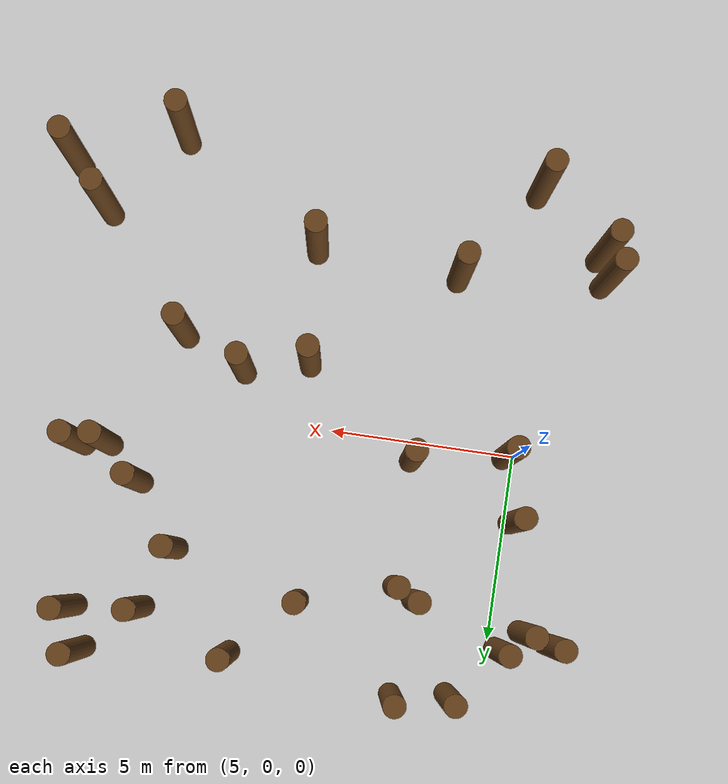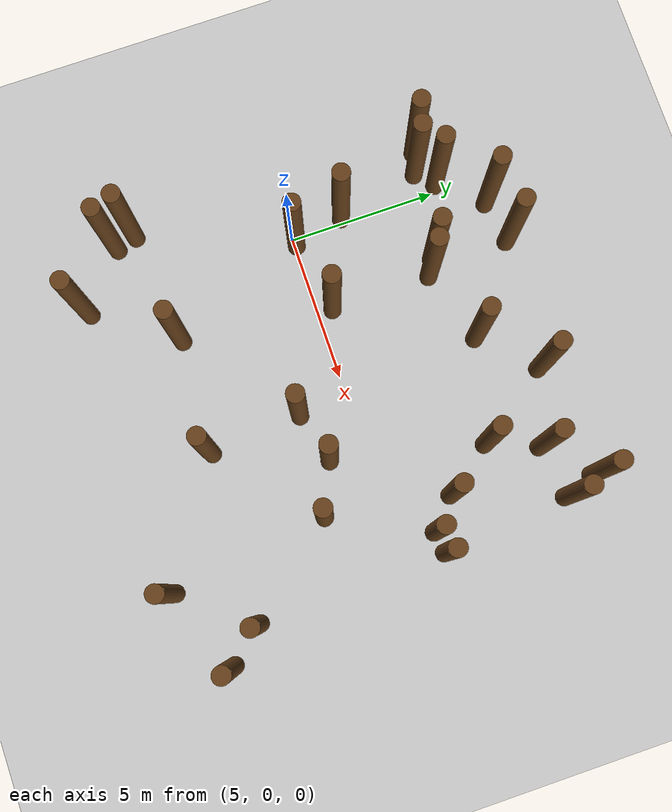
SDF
<?xml version="1.0" encoding="UTF-8"?>
<sdf version="1.9">
  <world name="forest">
    <physics type="ode">
      <max_step_size>0.004</max_step_size>
      <real_time_factor>1.0</real_time_factor>
      <real_time_update_rate>250</real_time_update_rate>
    </physics>
    <plugin name="gz::sim::systems::Physics" filename="gz-sim-physics-system"/>
    <plugin name="gz::sim::systems::UserCommands" filename="gz-sim-user-commands-system"/>
    <plugin name="gz::sim::systems::SceneBroadcaster" filename="gz-sim-scene-broadcaster-system"/>
    <plugin name="gz::sim::systems::Contact" filename="gz-sim-contact-system"/>
    <plugin name="gz::sim::systems::Imu" filename="gz-sim-imu-system"/>
    <plugin name="gz::sim::systems::AirPressure" filename="gz-sim-air-pressure-system"/>
    <plugin name="gz::sim::systems::ApplyLinkWrench" filename="gz-sim-apply-link-wrench-system"/>
    <plugin name="gz::sim::systems::NavSat" filename="gz-sim-navsat-system"/>
    <plugin name="gz::sim::systems::Sensors" filename="gz-sim-sensors-system">
      <render_engine>ogre2</render_engine>
    </plugin>
    <gui fullscreen="false">
      <plugin filename="MinimalScene" name="3D View">
        <gz-gui>
          <title>3D View</title>
          <property type="bool" key="showTitleBar">false</property>
          <property type="string" key="state">docked</property>
        </gz-gui>
        <engine>ogre2</engine>
        <scene>scene</scene>
        <ambient_light>0.4 0.4 0.4</ambient_light>
        <background_color>0.8 0.8 0.8</background_color>
        <camera_pose>-6 0 6 0 0.5 0</camera_pose>
        <camera_clip>
          <near>0.25</near>
          <far>25000</far>
        </camera_clip>
      </plugin>
      <plugin filename="EntityContextMenuPlugin" name="Entity context menu">
        <gz-gui>
          <property key="state" type="string">floating</property>
          <property key="width" type="double">5</property>
          <property key="height" type="double">5</property>
          <property key="showTitleBar" type="bool">false</property>
        </gz-gui>
      </plugin>
      <plugin filename="GzSceneManager" name="Scene Manager">
        <gz-gui>
          <property key="resizable" type="bool">false</property>
          <property key="width" type="double">5</property>
          <property key="height" type="double">5</property>
          <property key="state" type="string">floating</property>
          <property key="showTitleBar" type="bool">false</property>
        </gz-gui>
      </plugin>
      <plugin filename="InteractiveViewControl" name="Interactive view control">
        <gz-gui>
          <property key="resizable" type="bool">false</property>
          <property key="width" type="double">5</property>
          <property key="height" type="double">5</property>
          <property key="state" type="string">floating</property>
          <property key="showTitleBar" type="bool">false</property>
        </gz-gui>
      </plugin>
      <plugin filename="CameraTracking" name="Camera Tracking">
        <gz-gui>
          <property key="resizable" type="bool">false</property>
          <property key="width" type="double">5</property>
          <property key="height" type="double">5</property>
          <property key="state" type="string">floating</property>
          <property key="showTitleBar" type="bool">false</property>
        </gz-gui>
      </plugin>
      <plugin filename="MarkerManager" name="Marker manager">
        <gz-gui>
          <property key="resizable" type="bool">false</property>
          <property key="width" type="double">5</property>
          <property key="height" type="double">5</property>
          <property key="state" type="string">floating</property>
          <property key="showTitleBar" type="bool">false</property>
        </gz-gui>
      </plugin>
      <plugin filename="SelectEntities" name="Select Entities">
        <gz-gui>
          <anchors target="Select entities">
            <line own="right" target="right"/>
            <line own="top" target="top"/>
          </anchors>
          <property key="resizable" type="bool">false</property>
          <property key="width" type="double">5</property>
          <property key="height" type="double">5</property>
          <property key="state" type="string">floating</property>
          <property key="showTitleBar" type="bool">false</property>
        </gz-gui>
      </plugin>
      <plugin filename="VisualizationCapabilities" name="Visualization Capabilities">
        <gz-gui>
          <property key="resizable" type="bool">false</property>
          <property key="width" type="double">5</property>
          <property key="height" type="double">5</property>
          <property key="state" type="string">floating</property>
          <property key="showTitleBar" type="bool">false</property>
        </gz-gui>
      </plugin>
      <plugin filename="Spawn" name="Spawn Entities">
        <gz-gui>
          <anchors target="Select entities">
            <line own="right" target="right"/>
            <line own="top" target="top"/>
          </anchors>
          <property key="resizable" type="bool">false</property>
          <property key="width" type="double">5</property>
          <property key="height" type="double">5</property>
          <property key="state" type="string">floating</property>
          <property key="showTitleBar" type="bool">false</property>
        </gz-gui>
      </plugin>
      <plugin name="World control" filename="WorldControl">
        <gz-gui>
          <title>World control</title>
          <property type="bool" key="showTitleBar">0</property>
          <property type="bool" key="resizable">0</property>
          <property type="double" key="height">72</property>
          <property type="double" key="width">121</property>
          <property type="double" key="z">1</property>
          <property type="string" key="state">floating</property>
          <anchors target="3D View">
            <line own="left" target="left"/>
            <line own="bottom" target="bottom"/>
          </anchors>
        </gz-gui>
        <play_pause>1</play_pause>
        <step>1</step>
        <start_paused>1</start_paused>
      </plugin>
      <plugin name="World stats" filename="WorldStats">
        <gz-gui>
          <title>World stats</title>
          <property type="bool" key="showTitleBar">0</property>
          <property type="bool" key="resizable">0</property>
          <property type="double" key="height">110</property>
          <property type="double" key="width">290</property>
          <property type="double" key="z">1</property>
          <property type="string" key="state">floating</property>
          <anchors target="3D View">
            <line own="right" target="right"/>
            <line own="bottom" target="bottom"/>
          </anchors>
        </gz-gui>
        <sim_time>1</sim_time>
        <real_time>1</real_time>
        <real_time_factor>1</real_time_factor>
        <iterations>1</iterations>
      </plugin>
      <plugin name="Entity tree" filename="EntityTree"/>
    </gui>
    <gravity>0 0 -9.8</gravity>
    <magnetic_field>6e-06 2.3e-05 -4.2e-05</magnetic_field>
    <atmosphere type="adiabatic"/>
    <scene>
      <grid>false</grid>
      <ambient>0.4 0.4 0.4 1</ambient>
      <background>0.7 0.7 0.7 1</background>
      <shadows>true</shadows>
    </scene>
    <model name="ground_plane">
      <static>true</static>
      <link name="link">
        <collision name="collision">
          <geometry>
            <plane>
              <normal>0 0 1</normal>
              <size>1 1</size>
            </plane>
          </geometry>
          <surface>
            <friction>
              <ode/>
            </friction>
            <bounce/>
            <contact/>
          </surface>
        </collision>
        <visual name="visual">
          <geometry>
            <plane>
              <normal>0 0 1</normal>
              <size>100 100</size>
            </plane>
          </geometry>
          <material>
            <ambient>0.8 0.8 0.8 1</ambient>
            <diffuse>0.8 0.8 0.8 1</diffuse>
            <specular>0.8 0.8 0.8 1</specular>
          </material>
        </visual>
        <pose>0 0 0 0 -0 0</pose>
        <inertial>
          <pose>0 0 0 0 -0 0</pose>
          <mass>1</mass>
          <inertia>
            <ixx>1</ixx>
            <ixy>0</ixy>
            <ixz>0</ixz>
            <iyy>1</iyy>
            <iyz>0</iyz>
            <izz>1</izz>
          </inertia>
        </inertial>
        <enable_wind>false</enable_wind>
      </link>
      <pose>0 0 0 0 -0 0</pose>
      <self_collide>false</self_collide>
    </model>
    <light name="sunUTC" type="directional">
      <pose>0 0 500 0 -0 0</pose>
      <cast_shadows>true</cast_shadows>
      <intensity>1</intensity>
      <direction>0.001 0.625 -0.78</direction>
      <diffuse>0.904 0.904 0.904 1</diffuse>
      <specular>0.271 0.271 0.271 1</specular>
      <attenuation>
        <range>2000</range>
        <linear>0</linear>
        <constant>1</constant>
        <quadratic>0</quadratic>
      </attenuation>
      <spot>
        <inner_angle>0</inner_angle>
        <outer_angle>0</outer_angle>
        <falloff>0</falloff>
      </spot>
    </light>
    <spherical_coordinates>
      <surface_model>EARTH_WGS84</surface_model>
      <world_frame_orientation>ENU</world_frame_orientation>
      <latitude_deg>47.397971057728974</latitude_deg>
      <longitude_deg> 8.546163739800146</longitude_deg>
      <elevation>0</elevation>
    </spherical_coordinates>
    <model name="tree_0">
      <pose>4.767071417843711 5.213200132889732 2.5 0 0 0</pose>
      <static>true</static>
      <link name="link">
        <collision name="collision">
          <geometry>
            <cylinder>
              <radius>0.3</radius>
              <length>5.0</length>
            </cylinder>
          </geometry>
        </collision>
        <visual name="visual">
          <geometry>
            <cylinder>
              <radius>0.3</radius>
              <length>5.0</length>
            </cylinder>
          </geometry>
          <material>
            <ambient>0.3 0.2 0.1 1</ambient>
            <diffuse>0.4 0.25 0.1 1</diffuse>
          </material>
        </visual>
      </link>
    </model>
    <model name="tree_1">
      <pose>5.264033015202734 0.07883599719175205 2.5 0 0 0</pose>
      <static>true</static>
      <link name="link">
        <collision name="collision">
          <geometry>
            <cylinder>
              <radius>0.3</radius>
              <length>5.0</length>
            </cylinder>
          </geometry>
        </collision>
        <visual name="visual">
          <geometry>
            <cylinder>
              <radius>0.3</radius>
              <length>5.0</length>
            </cylinder>
          </geometry>
          <material>
            <ambient>0.3 0.2 0.1 1</ambient>
            <diffuse>0.4 0.25 0.1 1</diffuse>
          </material>
        </visual>
      </link>
    </model>
    <model name="tree_2">
      <pose>14.918216214927735 2.147431104889087 2.5 0 0 0</pose>
      <static>true</static>
      <link name="link">
        <collision name="collision">
          <geometry>
            <cylinder>
              <radius>0.3</radius>
              <length>5.0</length>
            </cylinder>
          </geometry>
        </collision>
        <visual name="visual">
          <geometry>
            <cylinder>
              <radius>0.3</radius>
              <length>5.0</length>
            </cylinder>
          </geometry>
          <material>
            <ambient>0.3 0.2 0.1 1</ambient>
            <diffuse>0.4 0.25 0.1 1</diffuse>
          </material>
        </visual>
      </link>
    </model>
    <model name="tree_3">
      <pose>7.759018848559467 0.514925858019982 2.5 0 0 0</pose>
      <static>true</static>
      <link name="link">
        <collision name="collision">
          <geometry>
            <cylinder>
              <radius>0.3</radius>
              <length>5.0</length>
            </cylinder>
          </geometry>
        </collision>
        <visual name="visual">
          <geometry>
            <cylinder>
              <radius>0.3</radius>
              <length>5.0</length>
            </cylinder>
          </geometry>
          <material>
            <ambient>0.3 0.2 0.1 1</ambient>
            <diffuse>0.4 0.25 0.1 1</diffuse>
          </material>
        </visual>
      </link>
    </model>
    <model name="tree_4">
      <pose>14.366995544166244 5.4740634675264666 2.5 0 0 0</pose>
      <static>true</static>
      <link name="link">
        <collision name="collision">
          <geometry>
            <cylinder>
              <radius>0.3</radius>
              <length>5.0</length>
            </cylinder>
          </geometry>
        </collision>
        <visual name="visual">
          <geometry>
            <cylinder>
              <radius>0.3</radius>
              <length>5.0</length>
            </cylinder>
          </geometry>
          <material>
            <ambient>0.3 0.2 0.1 1</ambient>
            <diffuse>0.4 0.25 0.1 1</diffuse>
          </material>
        </visual>
      </link>
    </model>
    <model name="tree_5">
      <pose>7.417577255832483 6.8418726750729775 2.5 0 0 0</pose>
      <static>true</static>
      <link name="link">
        <collision name="collision">
          <geometry>
            <cylinder>
              <radius>0.3</radius>
              <length>5.0</length>
            </cylinder>
          </geometry>
        </collision>
        <visual name="visual">
          <geometry>
            <cylinder>
              <radius>0.3</radius>
              <length>5.0</length>
            </cylinder>
          </geometry>
          <material>
            <ambient>0.3 0.2 0.1 1</ambient>
            <diffuse>0.4 0.25 0.1 1</diffuse>
          </material>
        </visual>
      </link>
    </model>
    <model name="tree_6">
      <pose>15.784778974548303 6.781062462307149 2.5 0 0 0</pose>
      <static>true</static>
      <link name="link">
        <collision name="collision">
          <geometry>
            <cylinder>
              <radius>0.3</radius>
              <length>5.0</length>
            </cylinder>
          </geometry>
        </collision>
        <visual name="visual">
          <geometry>
            <cylinder>
              <radius>0.3</radius>
              <length>5.0</length>
            </cylinder>
          </geometry>
          <material>
            <ambient>0.3 0.2 0.1 1</ambient>
            <diffuse>0.4 0.25 0.1 1</diffuse>
          </material>
        </visual>
      </link>
    </model>
    <model name="tree_7">
      <pose>13.698299085903825 3.7891720601450984 2.5 0 0 0</pose>
      <static>true</static>
      <link name="link">
        <collision name="collision">
          <geometry>
            <cylinder>
              <radius>0.3</radius>
              <length>5.0</length>
            </cylinder>
          </geometry>
        </collision>
        <visual name="visual">
          <geometry>
            <cylinder>
              <radius>0.3</radius>
              <length>5.0</length>
            </cylinder>
          </geometry>
          <material>
            <ambient>0.3 0.2 0.1 1</ambient>
            <diffuse>0.4 0.25 0.1 1</diffuse>
          </material>
        </visual>
      </link>
    </model>
    <model name="tree_8">
      <pose>3.431746672164935 4.891415966145239 2.5 0 0 0</pose>
      <static>true</static>
      <link name="link">
        <collision name="collision">
          <geometry>
            <cylinder>
              <radius>0.3</radius>
              <length>5.0</length>
            </cylinder>
          </geometry>
        </collision>
        <visual name="visual">
          <geometry>
            <cylinder>
              <radius>0.3</radius>
              <length>5.0</length>
            </cylinder>
          </geometry>
          <material>
            <ambient>0.3 0.2 0.1 1</ambient>
            <diffuse>0.4 0.25 0.1 1</diffuse>
          </material>
        </visual>
      </link>
    </model>
    <model name="tree_9">
      <pose>16.849084665670638 -5.053487805801126 2.5 0 0 0</pose>
      <static>true</static>
      <link name="link">
        <collision name="collision">
          <geometry>
            <cylinder>
              <radius>0.3</radius>
              <length>5.0</length>
            </cylinder>
          </geometry>
        </collision>
        <visual name="visual">
          <geometry>
            <cylinder>
              <radius>0.3</radius>
              <length>5.0</length>
            </cylinder>
          </geometry>
          <material>
            <ambient>0.3 0.2 0.1 1</ambient>
            <diffuse>0.4 0.25 0.1 1</diffuse>
          </material>
        </visual>
      </link>
    </model>
    <model name="tree_10">
      <pose>12.571873027789835 -1.2256128022588202 2.5 0 0 0</pose>
      <static>true</static>
      <link name="link">
        <collision name="collision">
          <geometry>
            <cylinder>
              <radius>0.3</radius>
              <length>5.0</length>
            </cylinder>
          </geometry>
        </collision>
        <visual name="visual">
          <geometry>
            <cylinder>
              <radius>0.3</radius>
              <length>5.0</length>
            </cylinder>
          </geometry>
          <material>
            <ambient>0.3 0.2 0.1 1</ambient>
            <diffuse>0.4 0.25 0.1 1</diffuse>
          </material>
        </visual>
      </link>
    </model>
    <model name="tree_11">
      <pose>15.049112851177043 -7.350332136110128 2.5 0 0 0</pose>
      <static>true</static>
      <link name="link">
        <collision name="collision">
          <geometry>
            <cylinder>
              <radius>0.3</radius>
              <length>5.0</length>
            </cylinder>
          </geometry>
        </collision>
        <visual name="visual">
          <geometry>
            <cylinder>
              <radius>0.3</radius>
              <length>5.0</length>
            </cylinder>
          </geometry>
          <material>
            <ambient>0.3 0.2 0.1 1</ambient>
            <diffuse>0.4 0.25 0.1 1</diffuse>
          </material>
        </visual>
      </link>
    </model>
    <model name="tree_12">
      <pose>3.2391336457792685 -4.994973565393176 2.5 0 0 0</pose>
      <static>true</static>
      <link name="link">
        <collision name="collision">
          <geometry>
            <cylinder>
              <radius>0.3</radius>
              <length>5.0</length>
            </cylinder>
          </geometry>
        </collision>
        <visual name="visual">
          <geometry>
            <cylinder>
              <radius>0.3</radius>
              <length>5.0</length>
            </cylinder>
          </geometry>
          <material>
            <ambient>0.3 0.2 0.1 1</ambient>
            <diffuse>0.4 0.25 0.1 1</diffuse>
          </material>
        </visual>
      </link>
    </model>
    <model name="tree_13">
      <pose>7.171135066994917 -4.582872222611833 2.5 0 0 0</pose>
      <static>true</static>
      <link name="link">
        <collision name="collision">
          <geometry>
            <cylinder>
              <radius>0.3</radius>
              <length>5.0</length>
            </cylinder>
          </geometry>
        </collision>
        <visual name="visual">
          <geometry>
            <cylinder>
              <radius>0.3</radius>
              <length>5.0</length>
            </cylinder>
          </geometry>
          <material>
            <ambient>0.3 0.2 0.1 1</ambient>
            <diffuse>0.4 0.25 0.1 1</diffuse>
          </material>
        </visual>
      </link>
    </model>
    <model name="tree_14">
      <pose>16.189340492437594 5.701340472792861 2.5 0 0 0</pose>
      <static>true</static>
      <link name="link">
        <collision name="collision">
          <geometry>
            <cylinder>
              <radius>0.3</radius>
              <length>5.0</length>
            </cylinder>
          </geometry>
        </collision>
        <visual name="visual">
          <geometry>
            <cylinder>
              <radius>0.3</radius>
              <length>5.0</length>
            </cylinder>
          </geometry>
          <material>
            <ambient>0.3 0.2 0.1 1</ambient>
            <diffuse>0.4 0.25 0.1 1</diffuse>
          </material>
        </visual>
      </link>
    </model>
    <model name="tree_15">
      <pose>4.851608739974794 1.8051984791675153 2.5 0 0 0</pose>
      <static>true</static>
      <link name="link">
        <collision name="collision">
          <geometry>
            <cylinder>
              <radius>0.3</radius>
              <length>5.0</length>
            </cylinder>
          </geometry>
        </collision>
        <visual name="visual">
          <geometry>
            <cylinder>
              <radius>0.3</radius>
              <length>5.0</length>
            </cylinder>
          </geometry>
          <material>
            <ambient>0.3 0.2 0.1 1</ambient>
            <diffuse>0.4 0.25 0.1 1</diffuse>
          </material>
        </visual>
      </link>
    </model>
    <model name="tree_16">
      <pose>10.83411702552685 -1.672909086701936 2.5 0 0 0</pose>
      <static>true</static>
      <link name="link">
        <collision name="collision">
          <geometry>
            <cylinder>
              <radius>0.3</radius>
              <length>5.0</length>
            </cylinder>
          </geometry>
        </collision>
        <visual name="visual">
          <geometry>
            <cylinder>
              <radius>0.3</radius>
              <length>5.0</length>
            </cylinder>
          </geometry>
          <material>
            <ambient>0.3 0.2 0.1 1</ambient>
            <diffuse>0.4 0.25 0.1 1</diffuse>
          </material>
        </visual>
      </link>
    </model>
    <model name="tree_17">
      <pose>11.886761196295627 6.346738629853768 2.5 0 0 0</pose>
      <static>true</static>
      <link name="link">
        <collision name="collision">
          <geometry>
            <cylinder>
              <radius>0.3</radius>
              <length>5.0</length>
            </cylinder>
          </geometry>
        </collision>
        <visual name="visual">
          <geometry>
            <cylinder>
              <radius>0.3</radius>
              <length>5.0</length>
            </cylinder>
          </geometry>
          <material>
            <ambient>0.3 0.2 0.1 1</ambient>
            <diffuse>0.4 0.25 0.1 1</diffuse>
          </material>
        </visual>
      </link>
    </model>
    <model name="tree_18">
      <pose>16.632986693383902 1.3480162156165427 2.5 0 0 0</pose>
      <static>true</static>
      <link name="link">
        <collision name="collision">
          <geometry>
            <cylinder>
              <radius>0.3</radius>
              <length>5.0</length>
            </cylinder>
          </geometry>
        </collision>
        <visual name="visual">
          <geometry>
            <cylinder>
              <radius>0.3</radius>
              <length>5.0</length>
            </cylinder>
          </geometry>
          <material>
            <ambient>0.3 0.2 0.1 1</ambient>
            <diffuse>0.4 0.25 0.1 1</diffuse>
          </material>
        </visual>
      </link>
    </model>
    <model name="tree_19">
      <pose>14.282189236106259 -1.978669501599465 2.5 0 0 0</pose>
      <static>true</static>
      <link name="link">
        <collision name="collision">
          <geometry>
            <cylinder>
              <radius>0.3</radius>
              <length>5.0</length>
            </cylinder>
          </geometry>
        </collision>
        <visual name="visual">
          <geometry>
            <cylinder>
              <radius>0.3</radius>
              <length>5.0</length>
            </cylinder>
          </geometry>
          <material>
            <ambient>0.3 0.2 0.1 1</ambient>
            <diffuse>0.4 0.25 0.1 1</diffuse>
          </material>
        </visual>
      </link>
    </model>
    <model name="tree_20">
      <pose>17.85467612030225 -6.243578234405554 2.5 0 0 0</pose>
      <static>true</static>
      <link name="link">
        <collision name="collision">
          <geometry>
            <cylinder>
              <radius>0.3</radius>
              <length>5.0</length>
            </cylinder>
          </geometry>
        </collision>
        <visual name="visual">
          <geometry>
            <cylinder>
              <radius>0.3</radius>
              <length>5.0</length>
            </cylinder>
          </geometry>
          <material>
            <ambient>0.3 0.2 0.1 1</ambient>
            <diffuse>0.4 0.25 0.1 1</diffuse>
          </material>
        </visual>
      </link>
    </model>
    <model name="tree_21">
      <pose>5.932206485344621 6.61862041976979 2.5 0 0 0</pose>
      <static>true</static>
      <link name="link">
        <collision name="collision">
          <geometry>
            <cylinder>
              <radius>0.3</radius>
              <length>5.0</length>
            </cylinder>
          </geometry>
        </collision>
        <visual name="visual">
          <geometry>
            <cylinder>
              <radius>0.3</radius>
              <length>5.0</length>
            </cylinder>
          </geometry>
          <material>
            <ambient>0.3 0.2 0.1 1</ambient>
            <diffuse>0.4 0.25 0.1 1</diffuse>
          </material>
        </visual>
      </link>
    </model>
    <model name="tree_22">
      <pose>7.72412015634781 3.9501808222244694 2.5 0 0 0</pose>
      <static>true</static>
      <link name="link">
        <collision name="collision">
          <geometry>
            <cylinder>
              <radius>0.3</radius>
              <length>5.0</length>
            </cylinder>
          </geometry>
        </collision>
        <visual name="visual">
          <geometry>
            <cylinder>
              <radius>0.3</radius>
              <length>5.0</length>
            </cylinder>
          </geometry>
          <material>
            <ambient>0.3 0.2 0.1 1</ambient>
            <diffuse>0.4 0.25 0.1 1</diffuse>
          </material>
        </visual>
      </link>
    </model>
    <model name="tree_23">
      <pose>7.167790106359343 4.241752949415279 2.5 0 0 0</pose>
      <static>true</static>
      <link name="link">
        <collision name="collision">
          <geometry>
            <cylinder>
              <radius>0.3</radius>
              <length>5.0</length>
            </cylinder>
          </geometry>
        </collision>
        <visual name="visual">
          <geometry>
            <cylinder>
              <radius>0.3</radius>
              <length>5.0</length>
            </cylinder>
          </geometry>
          <material>
            <ambient>0.3 0.2 0.1 1</ambient>
            <diffuse>0.4 0.25 0.1 1</diffuse>
          </material>
        </visual>
      </link>
    </model>
    <model name="tree_24">
      <pose>5.314183991760521 -7.232480081643033 2.5 0 0 0</pose>
      <static>true</static>
      <link name="link">
        <collision name="collision">
          <geometry>
            <cylinder>
              <radius>0.3</radius>
              <length>5.0</length>
            </cylinder>
          </geometry>
        </collision>
        <visual name="visual">
          <geometry>
            <cylinder>
              <radius>0.3</radius>
              <length>5.0</length>
            </cylinder>
          </geometry>
          <material>
            <ambient>0.3 0.2 0.1 1</ambient>
            <diffuse>0.4 0.25 0.1 1</diffuse>
          </material>
        </visual>
      </link>
    </model>
    <model name="tree_25">
      <pose>3.4543225436067733 -5.698070717123181 2.5 0 0 0</pose>
      <static>true</static>
      <link name="link">
        <collision name="collision">
          <geometry>
            <cylinder>
              <radius>0.3</radius>
              <length>5.0</length>
            </cylinder>
          </geometry>
        </collision>
        <visual name="visual">
          <geometry>
            <cylinder>
              <radius>0.3</radius>
              <length>5.0</length>
            </cylinder>
          </geometry>
          <material>
            <ambient>0.3 0.2 0.1 1</ambient>
            <diffuse>0.4 0.25 0.1 1</diffuse>
          </material>
        </visual>
      </link>
    </model>
    <model name="tree_26">
      <pose>11.092377357600093 -4.811161677025339 2.5 0 0 0</pose>
      <static>true</static>
      <link name="link">
        <collision name="collision">
          <geometry>
            <cylinder>
              <radius>0.3</radius>
              <length>5.0</length>
            </cylinder>
          </geometry>
        </collision>
        <visual name="visual">
          <geometry>
            <cylinder>
              <radius>0.3</radius>
              <length>5.0</length>
            </cylinder>
          </geometry>
          <material>
            <ambient>0.3 0.2 0.1 1</ambient>
            <diffuse>0.4 0.25 0.1 1</diffuse>
          </material>
        </visual>
      </link>
    </model>
    <model name="tree_27">
      <pose>4.182684076655969 4.670286536603969 2.5 0 0 0</pose>
      <static>true</static>
      <link name="link">
        <collision name="collision">
          <geometry>
            <cylinder>
              <radius>0.3</radius>
              <length>5.0</length>
            </cylinder>
          </geometry>
        </collision>
        <visual name="visual">
          <geometry>
            <cylinder>
              <radius>0.3</radius>
              <length>5.0</length>
            </cylinder>
          </geometry>
          <material>
            <ambient>0.3 0.2 0.1 1</ambient>
            <diffuse>0.4 0.25 0.1 1</diffuse>
          </material>
        </visual>
      </link>
    </model>
    <model name="tree_28">
      <pose>15.892245786506173 1.2545919926463345 2.5 0 0 0</pose>
      <static>true</static>
      <link name="link">
        <collision name="collision">
          <geometry>
            <cylinder>
              <radius>0.3</radius>
              <length>5.0</length>
            </cylinder>
          </geometry>
        </collision>
        <visual name="visual">
          <geometry>
            <cylinder>
              <radius>0.3</radius>
              <length>5.0</length>
            </cylinder>
          </geometry>
          <material>
            <ambient>0.3 0.2 0.1 1</ambient>
            <diffuse>0.4 0.25 0.1 1</diffuse>
          </material>
        </visual>
      </link>
    </model>
    <model name="tree_29">
      <pose>10.23747569659649 4.695620004393065 2.5 0 0 0</pose>
      <static>true</static>
      <link name="link">
        <collision name="collision">
          <geometry>
            <cylinder>
              <radius>0.3</radius>
              <length>5.0</length>
            </cylinder>
          </geometry>
        </collision>
        <visual name="visual">
          <geometry>
            <cylinder>
              <radius>0.3</radius>
              <length>5.0</length>
            </cylinder>
          </geometry>
          <material>
            <ambient>0.3 0.2 0.1 1</ambient>
            <diffuse>0.4 0.25 0.1 1</diffuse>
          </material>
        </visual>
      </link>
    </model>
  </world>
</sdf>
